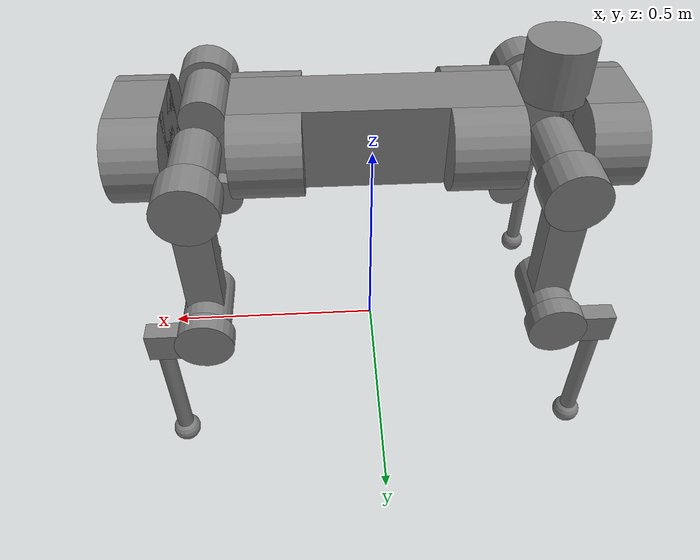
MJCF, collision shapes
<mujoco model="anymal_c">
  <compiler angle="radian" autolimits="true" />

  <option cone="elliptic" impratio="100" iterations="60"/>

  <default>
    <material reflectance="0.5" metallic="0.0" roughness="0.7"/>
    <default class="anymal_c">
      <joint damping="1" frictionloss="0.1" />

      <default class="visual">
        <geom type="mesh" contype="0" conaffinity="0" group="2" />
        <default class="visual_zflip">
          <geom quat="0 0 0 1" />
        </default>
      </default>
      <default class="collision">
        <geom group="3" type="cylinder" contype="0" conaffinity="0"/>
        <default class="foot">
          <geom type="sphere" size="0.03" pos="0 0 0.02325" priority="1" solimp="0.015 1 0.03" contype="0" conaffinity="3"
            condim="6"
            friction="0.8 0.02 0.01" />
        </default>
      </default>

      <default class="affine">
        <position kp="200" kv="1" ctrlrange="-6.28 6.28" forcerange="-140 140" />
      </default>
    </default>
  </default>

  <asset>
    <material name="black_plastic" rgba="0.007 0.007 0.007 1" />
    <material name="green" rgba="0.052 0.178 0.033 1" />
    <material name="red" rgba="0.178 0.006 0.005 1" />
    <material name="yellow" rgba="0.178 0.119 0.006 1" />
    <material name="lwl" rgba="0.8 0.8 0.8 1" />
    <material name="base" texture="base" />
    <material name="top_shell" texture="top_shell" />
    <material name="bottom_shell" texture="bottom_shell" />
    <material name="hip_l" texture="hip_l" />
    <material name="thigh" texture="thigh" />
    <material name="shank_l" texture="shank_l" metallic="1.0"/>
    <material name="foot" texture="foot" />
    <material name="hip_r" texture="hip_r" />
    <material name="shank" texture="shank_r" metallic="1.0"/>
    <material name="hatch" texture="hatch" />
    <material name="remote" texture="remote" />
    <material name="handle" texture="handle" />
    <material name="face" texture="face" />
    <material name="depth_camera" texture="depth_camera" />
    <material name="wide_angle_camera" texture="wide_angle_camera" />
    <material name="battery" texture="battery" />
    <material name="lidar_cage" texture="lidar_cage" />
    <material name="lidar" texture="lidar" />
    <material name="drive" texture="drive" />

    <texture type="2d" name="base" file="assets/base.png" />
    <texture type="2d" name="top_shell" file="assets/top_shell.png" />
    <texture type="2d" name="bottom_shell" file="assets/bottom_shell.png" />
    <texture type="2d" name="remote" file="assets/remote.png" />
    <texture type="2d" name="hatch" file="assets/hatch.png" />
    <texture type="2d" name="handle" file="assets/handle.png" />
    <texture type="2d" name="face" file="assets/face.png" />
    <texture type="2d" name="battery" file="assets/battery.png" />
    <texture type="2d" name="lidar_cage" file="assets/lidar_cage.png" />
    <texture type="2d" name="depth_camera" file="assets/depth_camera.png" />
    <texture type="2d" name="wide_angle_camera" file="assets/wide_angle_camera.png" />
    <texture type="2d" name="lidar" file="assets/lidar.png" />
    <texture type="2d" name="drive" file="assets/drive.png" />
    <texture type="2d" name="hip_l" file="assets/hip_l.png" />
    <texture type="2d" name="shank_l" file="assets/shank_l.png" />
    <texture type="2d" name="foot" file="assets/foot.png" />
    <texture type="2d" name="thigh" file="assets/thigh.png" />
    <texture type="2d" name="shank_r" file="assets/shank_r.png" />
    <texture type="2d" name="hip_r" file="assets/hip_r.png" />

    <mesh file="assets/base_0.obj" />
    <mesh file="assets/base_1.obj" />
    <mesh file="assets/base_2.obj" />
    <mesh file="assets/base_3.obj" />
    <mesh file="assets/base_4.obj" />
    <mesh file="assets/base_5.obj" />
    <mesh file="assets/top_shell.obj" />
    <mesh file="assets/bottom_shell.obj" />
    <mesh file="assets/remote.obj" />
    <mesh file="assets/handle.obj" />
    <mesh file="assets/face.obj" />
    <mesh file="assets/wide_angle_camera.obj" />
    <mesh file="assets/depth_camera.obj" />
    <mesh file="assets/battery.obj" />
    <mesh file="assets/lidar_cage.obj" />
    <mesh file="assets/lidar.obj" />
    <mesh file="assets/drive.obj" />
    <mesh file="assets/hip_l.obj" />
    <mesh file="assets/thigh.obj" />
    <mesh file="assets/shank_l.obj" />
    <mesh file="assets/foot.obj" />
    <mesh file="assets/hip_r.obj" />
    <mesh file="assets/hatch.obj" />
    <mesh file="assets/shank_r.obj" />

  </asset>

  <worldbody>
    <body name="base" pos="0 0 0.56" quat="1 0 0 0" childclass="anymal_c">
      <freejoint />
      <inertial mass="19.2035" pos="0.0025 0 0.0502071" quat="0.5 0.5 0.5 0.5"
        diaginertia="0.639559 0.624031 0.217374" />

      <!-- IMU sensor position -->
      <site name="imu_site" pos="0 0 0" size="0.01" />

      <geom mesh="base_0" material="green" class="visual" />
      <geom mesh="base_1" material="yellow" class="visual" />
      <geom mesh="base_2" material="red" class="visual" />
      <geom mesh="base_3" material="black_plastic" class="visual" />
      <geom mesh="base_4" material="lwl" class="visual" />
      <geom mesh="base_5" material="base" class="visual" />
      <geom name="base" class="collision" size="0.29 0.07 0.09" type="box" />
      <geom class="collision" size="0.09 0.0725" pos="0.2175 0.07 0" quat="1 0 1 0" />
      <geom class="collision" size="0.09 0.0725" pos="-0.2175 0.07 0" quat="1 0 1 0" />
      <geom class="collision" size="0.09 0.0725" pos="0.2175 -0.07 0" quat="1 0 1 0" />
      <geom class="collision" size="0.09 0.0725" pos="-0.2175 -0.07 0" quat="1 0 1 0" />
      <geom material="top_shell" mesh="top_shell" class="visual" />
      <geom material="bottom_shell" mesh="bottom_shell" class="visual" />
      <geom material="remote" mesh="remote" class="visual" />
      <geom material="handle" mesh="handle" class="visual" />
      <geom pos="0.4145 0 0" material="face" mesh="face" class="visual" />
      <geom class="collision" size="0.055 0.07 0.09" pos="0.4695 0 0" type="box" />
      <geom class="collision" size="0.09 0.055" pos="0.4695 0.07 0" quat="1 0 1 0" />
      <geom class="collision" size="0.09 0.055" pos="0.4695 -0.07 0" quat="1 0 1 0" />
      <geom pos="0.46165 0 -0.0292" quat="0.965926 0 0.258819 0" material="depth_camera"
        mesh="depth_camera"
        class="visual" />
      <geom pos="0.513 0 0.01497" material="wide_angle_camera" mesh="wide_angle_camera"
        class="visual" />
      <geom pos="-0.4145 0 0" material="face" mesh="face" class="visual_zflip" />
      <geom class="collision" size="0.055 0.07 0.09" pos="-0.4695 0 0" quat="0 0 0 1" type="box" />
      <geom class="collision" size="0.09 0.055" pos="-0.4695 -0.07 0" quat="0 -1 0 1" />
      <geom class="collision" size="0.09 0.055" pos="-0.4695 0.07 0" quat="0 -1 0 1" />
      <geom pos="-0.46165 0 -0.0292" quat="0 -0.258819 0 0.965926" material="depth_camera"
        mesh="depth_camera"
        class="visual" />
      <geom pos="-0.513 0 0.01497" material="wide_angle_camera" mesh="wide_angle_camera"
        class="visual_zflip" />
      <geom material="battery" mesh="battery" class="visual" />
      <geom pos="0 0.07646 0.02905" quat="0.683013 -0.183013 0.183013 0.683013"
        material="depth_camera"
        mesh="depth_camera" class="visual" />
      <geom pos="0 -0.07646 0.02905" quat="0.683013 0.183013 0.183013 -0.683013"
        material="depth_camera"
        mesh="depth_camera" class="visual" />
      <geom pos="-0.364 0 0.0735" material="lidar_cage" mesh="lidar_cage" class="visual" />
      <geom class="collision" size="0.07 0.06" pos="-0.364 0 0.1335" />
      <geom pos="-0.364 0 0.1422" quat="1 0 0 -1" material="lidar" mesh="lidar" class="visual" />
      <geom pos="0.2999 0.104 0" quat="0.258819 0.965926 0 0" material="drive" mesh="drive"
        class="visual" />
      <geom pos="0.2999 -0.104 0" quat="0.258819 -0.965926 0 0" material="drive" mesh="drive"
        class="visual" />
      <geom pos="-0.2999 0.104 0" quat="0 0 0.965926 -0.258819" material="drive" mesh="drive"
        class="visual" />
      <geom pos="-0.2999 -0.104 0" quat="0 0 -0.965926 -0.258819" material="drive" mesh="drive"
        class="visual" />
      <geom pos="0.116 0 0.073" material="hatch" mesh="hatch" class="visual" />
      <body name="LF_HIP" pos="0.2999 0.104 0" quat="0.258819 0.965926 0 0">
        <inertial mass="2.781" pos="0.0566606 -0.015294 -0.00829784"
          quat="-0.127978 0.709783 -0.135278 0.679359"
          diaginertia="0.00585729 0.00491868 0.00329081" />
        <joint name="LF_HAA" axis="1 0 0" range="-0.72 0.49" />
        <geom quat="0.258819 -0.965926 0 0" material="hip_l" mesh="hip_l" class="visual" />
        <geom pos="0.0599 -0.0725816 -0.041905" quat="0.183013 -0.683013 0.683013 0.183013"
          material="drive"
          mesh="drive" class="visual" />
        <geom class="collision" size="0.05 0.07" pos="0.0599 -0.0119598 -0.006905"
          quat="-0.353553 -0.612372 0.612372 -0.353553" />
        <body name="LF_THIGH" pos="0.0599 -0.0725816 -0.041905"
          quat="0.183013 -0.683013 0.683013 0.183013">
          <inertial mass="3.071" pos="0.0308147 4.64995e-05 -0.245696"
            quat="0.993166 -0.00515309 -0.0806592 0.0841972"
            diaginertia="0.03025 0.0298943 0.00418465" />
          <joint name="LF_HFE" axis="1 0 0" range="-9.42478 9.42478" />
          <geom quat="1 0 0 -1" material="thigh" mesh="thigh" class="visual" />
          <geom class="collision" size="0.065 0.04" pos="0.04 0 0" quat="0.5 0.5 -0.5 -0.5" />
          <geom class="collision" size="0.0375 0.03 0.141314" pos="0.03 0 -0.141314" quat="1 0 0 -1"
            type="box" />
          <geom pos="0.1003 0 -0.285" material="drive" mesh="drive" class="visual" />
          <geom class="collision" size="0.05 0.07" pos="0.0303 0 -0.285" quat="1 0 1 0" />
          <body name="LF_SHANK" pos="0.1003 0 -0.285">
            <inertial mass="0.58842" pos="0.005462 -0.0612528 -0.0806598"
              quat="0.992934 -0.115904 -0.00105487 -0.0254421"
              diaginertia="0.0101637 0.00923838 0.00111927" />
            <joint name="LF_KFE" axis="1 0 0" range="-9.42478 9.42478" />
            <geom quat="1 0 0 -1" material="shank_l" mesh="shank_l" class="visual" />
            <geom class="collision" size="0.06 0.02" pos="0.02 0 0" quat="0.5 0.5 -0.5 -0.5" />
            <geom class="collision" size="0.057499 0.03375 0.019" pos="0.02 -0.057499 0"
              quat="0.5 0.5 -0.5 -0.5"
              type="box" />
            <geom pos="0.01305 -0.08795 -0.33797" quat="0.382683 0 0 -0.92388" material="foot"
              mesh="foot"
              class="visual" />
            <geom class="collision" size="0.0175 0.141252" pos="0.01305 -0.08795 -0.168985"
              quat="1 0 0 -1" />
            <geom name="LF_FOOT" class="foot" pos="0.01305 -0.08795 -0.31547" quat="1 0 0 -1" />
          </body>
        </body>
      </body>
      <body name="RF_HIP" pos="0.2999 -0.104 0" quat="0.258819 -0.965926 0 0">
        <inertial mass="2.781" pos="0.0567633 0.015294 -0.00829784"
          quat="0.13524 0.679072 0.127985 0.710065"
          diaginertia="0.00585928 0.0049205 0.00329064" />
        <joint name="RF_HAA" axis="1 0 0" range="-0.49 0.72" />
        <geom quat="0.258819 0.965926 0 0" material="hip_r" mesh="hip_r" class="visual" />
        <geom pos="0.0599 0.0725816 -0.041905" quat="0.183013 0.683013 0.683013 -0.183013"
          material="drive" mesh="drive"
          class="visual" />
        <geom class="collision" size="0.05 0.07" pos="0.0599 0.0119598 -0.006905"
          quat="-0.353553 0.612372 0.612372 0.353553" />
        <body name="RF_THIGH" pos="0.0599 0.0725816 -0.041905"
          quat="0.183013 0.683013 0.683013 -0.183013">
          <inertial mass="3.071" pos="0.0308147 4.64995e-05 -0.245696"
            quat="0.992775 -0.00512735 -0.0806685 0.0886811"
            diaginertia="0.0302511 0.0298933 0.0041845" />
          <joint name="RF_HFE" axis="-1 0 0" range="-9.42478 9.42478" />
          <geom quat="1 0 0 -1" material="thigh" mesh="thigh" class="visual" />
          <geom class="collision" size="0.065 0.04" pos="0.04 0 0" quat="0.5 0.5 0.5 0.5" />
          <geom class="collision" size="0.0375 0.03 0.141314" pos="0.03 0 -0.141314" quat="1 0 0 1"
            type="box" />
          <geom pos="0.1003 0 -0.285" material="drive" mesh="drive" class="visual" />
          <geom class="collision" size="0.05 0.07" pos="0.0303 0 -0.285" quat="1 0 1 0" />
          <body name="RF_SHANK" pos="0.1003 0 -0.285">
            <inertial mass="0.58842" pos="0.005462 0.0612528 -0.0806598"
              quat="0.992934 0.115904 -0.00105487 0.0254421"
              diaginertia="0.0101637 0.00923838 0.00111927" />
            <joint name="RF_KFE" axis="-1 0 0" range="-9.42478 9.42478" />
            <geom quat="1 0 0 1" material="shank" mesh="shank_r" class="visual" />
            <geom class="collision" size="0.06 0.02" pos="0.02 0 0" quat="0.5 0.5 0.5 0.5" />
            <geom class="collision" size="0.057499 0.03375 0.019" pos="0.02 0.057499 0"
              quat="0.5 0.5 0.5 0.5"
              type="box" />
            <geom pos="0.01305 0.08795 -0.33797" quat="0.382683 0 0 0.92388" material="foot"
              mesh="foot" class="visual" />
            <geom class="collision" size="0.0175 0.141252" pos="0.01305 0.08795 -0.168985"
              quat="1 0 0 1" />
            <geom name="RF_FOOT" class="foot" pos="0.01305 0.08795 -0.31547" quat="1 0 0 1" />
          </body>
        </body>
      </body>
      <body name="LH_HIP" pos="-0.2999 0.104 0" quat="0 0 0.965926 -0.258819">
        <inertial mass="2.781" pos="0.0567633 0.015294 -0.00829784"
          quat="0.13524 0.679072 0.127985 0.710065"
          diaginertia="0.00585928 0.0049205 0.00329064" />
        <joint name="LH_HAA" axis="-1 0 0" range="-0.72 0.49" />
        <geom quat="-0.258819 -0.965926 0 0" material="hip_r" mesh="hip_r" class="visual" />
        <geom pos="0.0599 0.0725816 -0.041905" quat="0.183013 0.683013 0.683013 -0.183013"
          material="drive" mesh="drive"
          class="visual" />
        <geom class="collision" size="0.05 0.07" pos="0.0599 0.0119598 -0.006905"
          quat="-0.353553 0.612372 0.612372 0.353553" />
        <body name="LH_THIGH" pos="0.0599 0.0725816 -0.041905"
          quat="0.183013 0.683013 0.683013 -0.183013">
          <inertial mass="3.071" pos="0.0308147 4.64995e-05 -0.245696"
            quat="0.992775 -0.00512735 -0.0806685 0.0886811"
            diaginertia="0.0302511 0.0298933 0.0041845" />
          <joint name="LH_HFE" axis="1 0 0" range="-9.42478 9.42478" />
          <geom quat="1 0 0 -1" material="thigh" mesh="thigh" class="visual" />
          <geom class="collision" size="0.065 0.04" pos="0.04 0 0" quat="0.5 0.5 -0.5 -0.5" />
          <geom class="collision" size="0.0375 0.03 0.141314" pos="0.03 0 -0.141314" quat="1 0 0 -1"
            type="box" />
          <geom pos="0.1003 0 -0.285" material="drive" mesh="drive" class="visual" />
          <geom class="collision" size="0.05 0.07" pos="0.0303 0 -0.285" quat="1 0 1 0" />
          <body name="LH_SHANK" pos="0.1003 0 -0.285">
            <inertial mass="0.58842" pos="0.005462 0.0612528 -0.0806598"
              quat="0.992934 0.115904 -0.00105487 0.0254421"
              diaginertia="0.0101637 0.00923838 0.00111927" />
            <joint name="LH_KFE" axis="1 0 0" range="-9.42478 9.42478" />
            <geom quat="-1 0 0 -1" material="shank" mesh="shank_r" class="visual" />
            <geom class="collision" size="0.06 0.02" pos="0.02 0 0" quat="0.5 0.5 -0.5 -0.5" />
            <geom class="collision" size="0.057499 0.03375 0.019" pos="0.02 0.057499 0"
              quat="0.5 0.5 -0.5 -0.5"
              type="box" />
            <geom pos="0.01305 0.08795 -0.33797" quat="-0.382683 0 0 -0.92388" material="foot"
              mesh="foot"
              class="visual" />
            <geom class="collision" size="0.0175 0.141252" pos="0.01305 0.08795 -0.168985"
              quat="1 0 0 -1" />
            <geom name="LH_FOOT" class="foot" pos="0.01305 0.08795 -0.31547" quat="1 0 0 -1" />
          </body>
        </body>
      </body>
      <body name="RH_HIP" pos="-0.2999 -0.104 0" quat="0 0 -0.965926 -0.258819">
        <inertial mass="2.781" pos="0.0566606 -0.015294 -0.00829784"
          quat="-0.127978 0.709783 -0.135278 0.679359"
          diaginertia="0.00585729 0.00491868 0.00329081" />
        <joint name="RH_HAA" axis="-1 0 0" range="-0.49 0.72" />
        <geom quat="-0.258819 0.965926 0 0" material="hip_l" mesh="hip_l" class="visual" />
        <geom pos="0.0599 -0.0725816 -0.041905" quat="-0.183013 0.683013 -0.683013 -0.183013"
          material="drive"
          mesh="drive" class="visual" />
        <geom class="collision" size="0.05 0.07" pos="0.0599 -0.0119598 -0.006905"
          quat="0.353553 0.612372 -0.612372 0.353553" />
        <body name="RH_THIGH" pos="0.0599 -0.0725816 -0.041905"
          quat="-0.183013 0.683013 -0.683013 -0.183013">
          <inertial mass="3.071" pos="0.0308147 4.64995e-05 -0.245696"
            quat="0.993166 -0.00515309 -0.0806592 0.0841972"
            diaginertia="0.03025 0.0298943 0.00418465" />
          <joint name="RH_HFE" axis="-1 0 0" range="-9.42478 9.42478" />
          <geom quat="1 0 0 -1" material="thigh" mesh="thigh" class="visual" />
          <geom class="collision" size="0.065 0.04" pos="0.04 0 0" quat="0.5 0.5 0.5 0.5" />
          <geom class="collision" size="0.0375 0.03 0.141314" pos="0.03 0 -0.141314" quat="1 0 0 1"
            type="box" />
          <geom pos="0.1003 0 -0.285" material="drive" mesh="drive" class="visual" />
          <geom class="collision" size="0.05 0.07" pos="0.0303 0 -0.285" quat="1 0 1 0" />
          <body name="RH_SHANK" pos="0.1003 0 -0.285">
            <inertial mass="0.58842" pos="0.005462 -0.0612528 -0.0806598"
              quat="0.992934 -0.115904 -0.00105487 -0.0254421"
              diaginertia="0.0101637 0.00923838 0.00111927" />
            <joint name="RH_KFE" axis="-1 0 0" range="-9.42478 9.42478" />
            <geom quat="1 0 0 -1" material="shank_l" mesh="shank_l" class="visual" />
            <geom class="collision" size="0.06 0.02" pos="0.02 0 0" quat="0.5 0.5 0.5 0.5" />
            <geom class="collision" size="0.057499 0.03375 0.019" pos="0.02 -0.057499 0"
              quat="0.5 0.5 0.5 0.5"
              type="box" />
            <geom pos="0.01305 -0.08795 -0.33797" quat="0.382683 0 0 -0.92388" material="foot"
              mesh="foot"
              class="visual" />
            <geom class="collision" size="0.0175 0.141252" pos="0.01305 -0.08795 -0.168985"
              quat="1 0 0 1" />
            <geom name="RH_FOOT" class="foot" pos="0.01305 -0.08795 -0.31547" quat="1 0 0 1" />
          </body>
        </body>
      </body>
    </body>

  </worldbody>

  <contact>
    <exclude body1="base" body2="LF_THIGH" />
    <exclude body1="base" body2="RF_THIGH" />
    <exclude body1="base" body2="LH_THIGH" />
    <exclude body1="base" body2="RH_THIGH" />
  </contact>

  <sensor>
    <framelinvel name="base_linvel" objtype="body" objname="base" />
    <gyro name="base_gyro" site="imu_site" />
  </sensor>

  <actuator>
    <position class="affine" joint="LF_HAA" name="LF_HAA" />
    <position class="affine" joint="LF_HFE" name="LF_HFE" />
    <position class="affine" joint="LF_KFE" name="LF_KFE" />
    <position class="affine" joint="RF_HAA" name="RF_HAA" />
    <position class="affine" joint="RF_HFE" name="RF_HFE" />
    <position class="affine" joint="RF_KFE" name="RF_KFE" />
    <position class="affine" joint="LH_HAA" name="LH_HAA" />
    <position class="affine" joint="LH_HFE" name="LH_HFE" />
    <position class="affine" joint="LH_KFE" name="LH_KFE" />
    <position class="affine" joint="RH_HAA" name="RH_HAA" />
    <position class="affine" joint="RH_HFE" name="RH_HFE" />
    <position class="affine" joint="RH_KFE" name="RH_KFE" />
  </actuator>
</mujoco>
